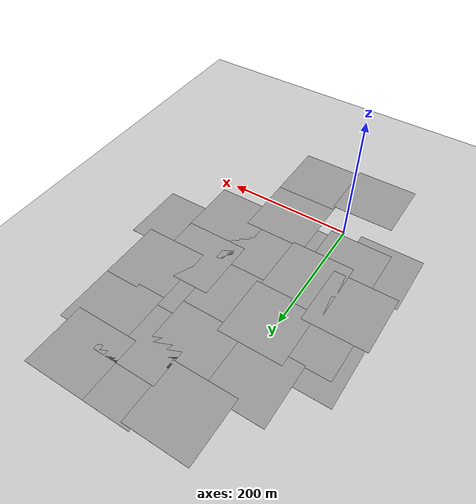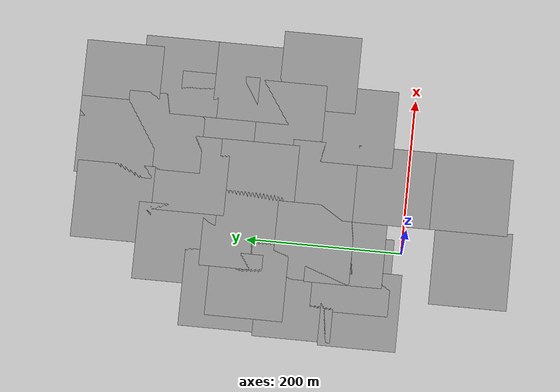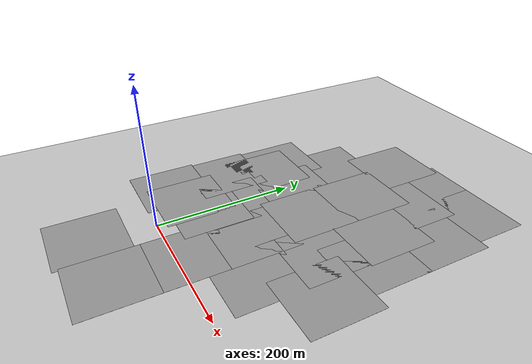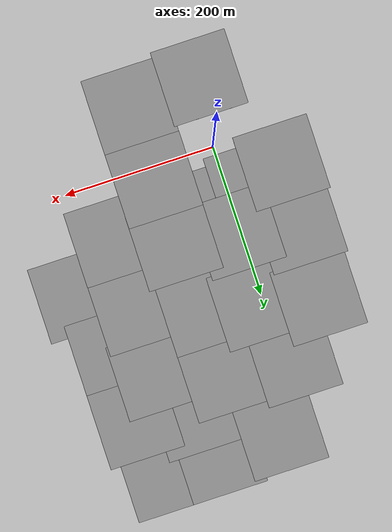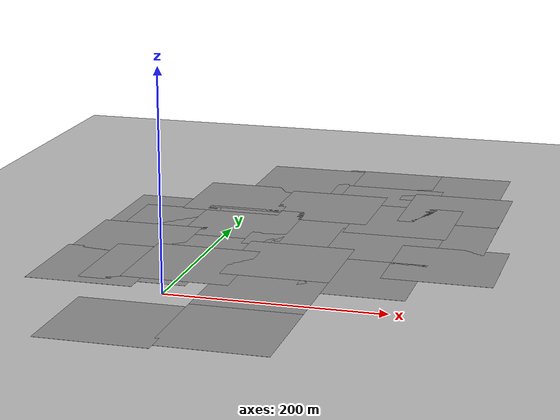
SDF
<sdf version="1.7">
 <world name="default">
  <light name="sun" type="directional">
   <pose>0 0 10 0 -0 0</pose>
   <diffuse>0.8 0.8 0.8 1</diffuse>
   <specular>0.2 0.2 0.2 1</specular>
   <attenuation>
    <range>1000</range>
    <constant>0.9</constant>
    <linear>0.01</linear>
    <quadratic>0.001</quadratic>
   </attenuation>
   <direction>-0.5 0.1 -0.9</direction>
   <spot><inner_angle>0</inner_angle><outer_angle>0</outer_angle><falloff>0</falloff></spot>
  </light>
  <model name="ground_plane">
   <pose>0 0 5 0 -0 0</pose>
   <static>1</static>
   <link name="link">
    <collision name="collision">
     <geometry><plane><normal>0 0 1</normal><size>100 100</size></plane></geometry>
     <surface><friction><ode><mu>100</mu><mu2>50</mu2></ode></friction></surface>
    </collision>
    <visual name="visual">
     <cast_shadows>0</cast_shadows>
     <geometry><plane><normal>0 0 1</normal><size>100 100</size></plane></geometry>
     <material>
      <script><uri>file://media/materials/scripts/gazebo.material</uri><name>Gazebo/Grey</name></script>
     </material>
    </visual>
   </link>
  </model>
  <gravity>0 0 -9.8</gravity>
  <magnetic_field>6e-06 2.3e-05 -4.2e-05</magnetic_field>
  <atmosphere type="adiabatic"/>
  <physics type="ode">
   <max_step_size>0.001</max_step_size>
   <real_time_factor>1</real_time_factor>
   <real_time_update_rate>1000</real_time_update_rate>
  </physics>
  <scene><ambient>0.4 0.4 0.4 1</ambient><background>0.7 0.7 0.7 1</background><shadows>1</shadows></scene>
  <spherical_coordinates>
   <surface_model>EARTH_WGS84</surface_model>
   <latitude_deg>0</latitude_deg>
   <longitude_deg>0</longitude_deg>
   <elevation>0</elevation>
   <heading_deg>0</heading_deg>
  </spherical_coordinates>
  <light name="user_spot_light_0" type="spot">
   <pose>-343.067 168.398 1 0 -0 0</pose>
   <diffuse>0.5 0.5 0.5 1</diffuse>
   <specular>0.1 0.1 0.1 1</specular>
   <direction>0 0 -1</direction>
   <attenuation>
    <range>20</range>
    <constant>0.5</constant>
    <linear>0.01</linear>
    <quadratic>0.001</quadratic>
   </attenuation>
   <cast_shadows>0</cast_shadows>
   <spot><inner_angle>0.6</inner_angle><outer_angle>1</outer_angle><falloff>1</falloff></spot>
  </light>
  <light name="user_spot_light_1" type="spot">
   <pose>-273.408 157.232 1 0 -0 0</pose>
   <diffuse>0.5 0.5 0.5 1</diffuse>
   <specular>0.1 0.1 0.1 1</specular>
   <direction>0 0 -1</direction>
   <attenuation>
    <range>20</range>
    <constant>0.5</constant>
    <linear>0.01</linear>
    <quadratic>0.001</quadratic>
   </attenuation>
   <cast_shadows>0</cast_shadows>
   <spot><inner_angle>0.6</inner_angle><outer_angle>1</outer_angle><falloff>1</falloff></spot>
  </light>
  <model name="ground_plane_0">
   <static>1</static>
   <link name="link">
    <collision name="collision">
     <geometry><plane><normal>0 0 1</normal><size>100 100</size></plane></geometry>
     <surface><friction><ode><mu>100</mu><mu2>50</mu2></ode></friction></surface>
    </collision>
    <visual name="visual">
     <cast_shadows>0</cast_shadows>
     <geometry><plane><normal>0 0 1</normal><size>100 100</size></plane></geometry>
     <material>
      <script><uri>file://media/materials/scripts/gazebo.material</uri><name>Gazebo/Grey</name></script>
     </material>
    </visual>
   </link>
   <pose>-11.1027 -89.6837 5 0 -0 0</pose>
  </model>
  <model name="ground_plane_1">
   <static>1</static>
   <link name="link">
    <collision name="collision">
     <geometry><plane><normal>0 0 1</normal><size>100 100</size></plane></geometry>
     <surface><friction><ode><mu>100</mu><mu2>50</mu2></ode></friction></surface>
    </collision>
    <visual name="visual">
     <cast_shadows>0</cast_shadows>
     <geometry><plane><normal>0 0 1</normal><size>100 100</size></plane></geometry>
     <material>
      <script><uri>file://media/materials/scripts/gazebo.material</uri><name>Gazebo/Grey</name></script>
     </material>
    </visual>
   </link>
   <pose>85.0806 16.9932 5 0 -0 0</pose>
  </model>
  <model name="ground_plane_2">
   <static>1</static>
   <link name="link">
    <collision name="collision">
     <geometry><plane><normal>0 0 1</normal><size>100 100</size></plane></geometry>
     <surface><friction><ode><mu>100</mu><mu2>50</mu2></ode></friction></surface>
    </collision>
    <visual name="visual">
     <cast_shadows>0</cast_shadows>
     <geometry><plane><normal>0 0 1</normal><size>100 100</size></plane></geometry>
     <material>
      <script><uri>file://media/materials/scripts/gazebo.material</uri><name>Gazebo/Grey</name></script>
     </material>
    </visual>
   </link>
   <pose>85.1922 -82.4172 5 0 -0 0</pose>
  </model>
  <model name="ground_plane_3">
   <static>1</static>
   <link name="link">
    <collision name="collision">
     <geometry><plane><normal>0 0 1</normal><size>100 100</size></plane></geometry>
     <surface><friction><ode><mu>100</mu><mu2>50</mu2></ode></friction></surface>
    </collision>
    <visual name="visual">
     <cast_shadows>0</cast_shadows>
     <geometry><plane><normal>0 0 1</normal><size>100 100</size></plane></geometry>
     <material>
      <script><uri>file://media/materials/scripts/gazebo.material</uri><name>Gazebo/Grey</name></script>
     </material>
    </visual>
   </link>
   <pose>-77.3086 46.9241 5 0 -0 0</pose>
  </model>
  <model name="ground_plane_4">
   <static>1</static>
   <link name="link">
    <collision name="collision">
     <geometry><plane><normal>0 0 1</normal><size>100 100</size></plane></geometry>
     <surface><friction><ode><mu>100</mu><mu2>50</mu2></ode></friction></surface>
    </collision>
    <visual name="visual">
     <cast_shadows>0</cast_shadows>
     <geometry><plane><normal>0 0 1</normal><size>100 100</size></plane></geometry>
     <material>
      <script><uri>file://media/materials/scripts/gazebo.material</uri><name>Gazebo/Grey</name></script>
     </material>
    </visual>
   </link>
   <pose>85.2791 101.703 5 0 -0 0</pose>
  </model>
  <model name="ground_plane_5">
   <static>1</static>
   <link name="link">
    <collision name="collision">
     <geometry><plane><normal>0 0 1</normal><size>100 100</size></plane></geometry>
     <surface><friction><ode><mu>100</mu><mu2>50</mu2></ode></friction></surface>
    </collision>
    <visual name="visual">
     <cast_shadows>0</cast_shadows>
     <geometry><plane><normal>0 0 1</normal><size>100 100</size></plane></geometry>
     <material>
      <script><uri>file://media/materials/scripts/gazebo.material</uri><name>Gazebo/Grey</name></script>
     </material>
    </visual>
   </link>
   <pose>3.87042 113.697 5 0 -0 0</pose>
  </model>
  <model name="ground_plane_6">
   <static>1</static>
   <link name="link">
    <collision name="collision">
     <geometry><plane><normal>0 0 1</normal><size>100 100</size></plane></geometry>
     <surface>
      <contact><collide_bitmask>65535</collide_bitmask></contact>
      <friction><ode><mu>100</mu><mu2>50</mu2></ode></friction>
     </surface>
    </collision>
    <visual name="visual">
     <cast_shadows>0</cast_shadows>
     <geometry><plane><normal>0 0 1</normal><size>100 100</size></plane></geometry>
     <material>
      <script><uri>file://media/materials/scripts/gazebo.material</uri><name>Gazebo/Grey</name></script>
     </material>
    </visual>
   </link>
   <pose>-73.3014 131.213 5 0 -0 0</pose>
  </model>
  <model name="ground_plane_7">
   <static>1</static>
   <link name="link">
    <collision name="collision">
     <geometry><plane><normal>0 0 1</normal><size>100 100</size></plane></geometry>
     <surface>
      <contact><collide_bitmask>65535</collide_bitmask></contact>
      <friction><ode><mu>100</mu><mu2>50</mu2></ode></friction>
     </surface>
    </collision>
    <visual name="visual">
     <cast_shadows>0</cast_shadows>
     <geometry><plane><normal>0 0 1</normal><size>100 100</size></plane></geometry>
     <material>
      <script><uri>file://media/materials/scripts/gazebo.material</uri><name>Gazebo/Grey</name></script>
     </material>
    </visual>
   </link>
   <pose>-68.7114 226.423 5 0 -0 0</pose>
  </model>
  <model name="ground_plane_8">
   <static>1</static>
   <link name="link">
    <collision name="collision">
     <geometry><plane><normal>0 0 1</normal><size>100 100</size></plane></geometry>
     <surface>
      <contact><collide_bitmask>65535</collide_bitmask></contact>
      <friction><ode><mu>100</mu><mu2>50</mu2></ode></friction>
     </surface>
    </collision>
    <visual name="visual">
     <cast_shadows>0</cast_shadows>
     <geometry><plane><normal>0 0 1</normal><size>100 100</size></plane></geometry>
     <material>
      <script><uri>file://media/materials/scripts/gazebo.material</uri><name>Gazebo/Grey</name></script>
     </material>
    </visual>
   </link>
   <pose>11.0731 207.73 5 0 -0 0</pose>
  </model>
  <model name="ground_plane_9">
   <static>1</static>
   <link name="link">
    <collision name="collision">
     <geometry><plane><normal>0 0 1</normal><size>100 100</size></plane></geometry>
     <surface>
      <contact><collide_bitmask>65535</collide_bitmask></contact>
      <friction><ode><mu>100</mu><mu2>50</mu2></ode></friction>
     </surface>
    </collision>
    <visual name="visual">
     <cast_shadows>0</cast_shadows>
     <geometry><plane><normal>0 0 1</normal><size>100 100</size></plane></geometry>
     <material>
      <script><uri>file://media/materials/scripts/gazebo.material</uri><name>Gazebo/Grey</name></script>
     </material>
    </visual>
   </link>
   <pose>77.5193 193.345 5 0 -0 0</pose>
  </model>
  <model name="ground_plane_10">
   <static>1</static>
   <link name="link">
    <collision name="collision">
     <geometry><plane><normal>0 0 1</normal><size>100 100</size></plane></geometry>
     <surface>
      <contact><collide_bitmask>65535</collide_bitmask></contact>
      <friction><ode><mu>100</mu><mu2>50</mu2></ode></friction>
     </surface>
    </collision>
    <visual name="visual">
     <cast_shadows>0</cast_shadows>
     <geometry><plane><normal>0 0 1</normal><size>100 100</size></plane></geometry>
     <material>
      <script><uri>file://media/materials/scripts/gazebo.material</uri><name>Gazebo/Grey</name></script>
     </material>
    </visual>
   </link>
   <pose>-14.1848 291.445 5 0 -0 0</pose>
  </model>
  <model name="ground_plane_11">
   <static>1</static>
   <link name="link">
    <collision name="collision">
     <geometry><plane><normal>0 0 1</normal><size>100 100</size></plane></geometry>
     <surface>
      <contact><collide_bitmask>65535</collide_bitmask></contact>
      <friction><ode><mu>100</mu><mu2>50</mu2></ode></friction>
     </surface>
    </collision>
    <visual name="visual">
     <cast_shadows>0</cast_shadows>
     <geometry><plane><normal>0 0 1</normal><size>100 100</size></plane></geometry>
     <material>
      <script><uri>file://media/materials/scripts/gazebo.material</uri><name>Gazebo/Grey</name></script>
     </material>
    </visual>
   </link>
   <pose>77.4044 281.986 5 0 -0 0</pose>
  </model>
  <model name="ground_plane_12">
   <static>1</static>
   <link name="link">
    <collision name="collision">
     <geometry><plane><normal>0 0 1</normal><size>100 100</size></plane></geometry>
     <surface>
      <contact><collide_bitmask>65535</collide_bitmask></contact>
      <friction><ode><mu>100</mu><mu2>50</mu2></ode></friction>
     </surface>
    </collision>
    <visual name="visual">
     <cast_shadows>0</cast_shadows>
     <geometry><plane><normal>0 0 1</normal><size>100 100</size></plane></geometry>
     <material>
      <script><uri>file://media/materials/scripts/gazebo.material</uri><name>Gazebo/Grey</name></script>
     </material>
    </visual>
   </link>
   <pose>159.406 72.3911 5 0 -0 0</pose>
  </model>
  <model name="ground_plane_13">
   <static>1</static>
   <link name="link">
    <collision name="collision">
     <geometry><plane><normal>0 0 1</normal><size>100 100</size></plane></geometry>
     <surface>
      <contact><collide_bitmask>65535</collide_bitmask></contact>
      <friction><ode><mu>100</mu><mu2>50</mu2></ode></friction>
     </surface>
    </collision>
    <visual name="visual">
     <cast_shadows>0</cast_shadows>
     <geometry><plane><normal>0 0 1</normal><size>100 100</size></plane></geometry>
     <material>
      <script><uri>file://media/materials/scripts/gazebo.material</uri><name>Gazebo/Grey</name></script>
     </material>
    </visual>
   </link>
   <pose>159.035 165.358 5 0 -0 0</pose>
  </model>
  <model name="ground_plane_14">
   <static>1</static>
   <link name="link">
    <collision name="collision">
     <geometry><plane><normal>0 0 1</normal><size>100 100</size></plane></geometry>
     <surface>
      <contact><collide_bitmask>65535</collide_bitmask></contact>
      <friction><ode><mu>100</mu><mu2>50</mu2></ode></friction>
     </surface>
    </collision>
    <visual name="visual">
     <cast_shadows>0</cast_shadows>
     <geometry><plane><normal>0 0 1</normal><size>100 100</size></plane></geometry>
     <material>
      <script><uri>file://media/materials/scripts/gazebo.material</uri><name>Gazebo/Grey</name></script>
     </material>
    </visual>
   </link>
   <pose>161.322 252.487 5 0 -0 0</pose>
  </model>
  <model name="ground_plane_15">
   <static>1</static>
   <link name="link">
    <collision name="collision">
     <geometry><plane><normal>0 0 1</normal><size>100 100</size></plane></geometry>
     <surface>
      <contact><collide_bitmask>65535</collide_bitmask></contact>
      <friction><ode><mu>100</mu><mu2>50</mu2></ode></friction>
     </surface>
    </collision>
    <visual name="visual">
     <cast_shadows>0</cast_shadows>
     <geometry><plane><normal>0 0 1</normal><size>100 100</size></plane></geometry>
     <material>
      <script><uri>file://media/materials/scripts/gazebo.material</uri><name>Gazebo/Grey</name></script>
     </material>
    </visual>
   </link>
   <pose>32.4628 375.298 5 0 -0 0</pose>
  </model>
  <model name="ground_plane_16">
   <static>1</static>
   <link name="link">
    <collision name="collision">
     <geometry><plane><normal>0 0 1</normal><size>100 100</size></plane></geometry>
     <surface>
      <contact><collide_bitmask>65535</collide_bitmask></contact>
      <friction><ode><mu>100</mu><mu2>50</mu2></ode></friction>
     </surface>
    </collision>
    <visual name="visual">
     <cast_shadows>0</cast_shadows>
     <geometry><plane><normal>0 0 1</normal><size>100 100</size></plane></geometry>
     <material>
      <script><uri>file://media/materials/scripts/gazebo.material</uri><name>Gazebo/Grey</name></script>
     </material>
    </visual>
   </link>
   <pose>203.642 303.634 5 0 -0 0</pose>
  </model>
  <model name="ground_plane_17">
   <static>1</static>
   <link name="link">
    <collision name="collision">
     <geometry><plane><normal>0 0 1</normal><size>100 100</size></plane></geometry>
     <surface>
      <contact><collide_bitmask>65535</collide_bitmask></contact>
      <friction><ode><mu>100</mu><mu2>50</mu2></ode></friction>
     </surface>
    </collision>
    <visual name="visual">
     <cast_shadows>0</cast_shadows>
     <geometry><plane><normal>0 0 1</normal><size>100 100</size></plane></geometry>
     <material>
      <script><uri>file://media/materials/scripts/gazebo.material</uri><name>Gazebo/Grey</name></script>
     </material>
    </visual>
   </link>
   <pose>129.312 318.254 5 0 -0 0</pose>
  </model>
  <model name="ground_plane_18">
   <static>1</static>
   <link name="link">
    <collision name="collision">
     <geometry><plane><normal>0 0 1</normal><size>100 100</size></plane></geometry>
     <surface>
      <contact><collide_bitmask>65535</collide_bitmask></contact>
      <friction><ode><mu>100</mu><mu2>50</mu2></ode></friction>
     </surface>
    </collision>
    <visual name="visual">
     <cast_shadows>0</cast_shadows>
     <geometry><plane><normal>0 0 1</normal><size>100 100</size></plane></geometry>
     <material>
      <script><uri>file://media/materials/scripts/gazebo.material</uri><name>Gazebo/Grey</name></script>
     </material>
    </visual>
   </link>
   <pose>116.736 379.367 5 0 -0 0</pose>
  </model>
  <model name="ground_plane_19">
   <static>1</static>
   <link name="link">
    <collision name="collision">
     <geometry><plane><normal>0 0 1</normal><size>100 100</size></plane></geometry>
     <surface>
      <contact><collide_bitmask>65535</collide_bitmask></contact>
      <friction><ode><mu>100</mu><mu2>50</mu2></ode></friction>
     </surface>
    </collision>
    <visual name="visual">
     <cast_shadows>0</cast_shadows>
     <geometry><plane><normal>0 0 1</normal><size>100 100</size></plane></geometry>
     <material>
      <script><uri>file://media/materials/scripts/gazebo.material</uri><name>Gazebo/Grey</name></script>
     </material>
    </visual>
   </link>
   <pose>190.47 379.379 5 0 -0 0</pose>
  </model>
  <model name="ground_plane_20">
   <static>1</static>
   <link name="link">
    <collision name="collision">
     <geometry><plane><normal>0 0 1</normal><size>100 100</size></plane></geometry>
     <surface>
      <contact><collide_bitmask>65535</collide_bitmask></contact>
      <friction><ode><mu>100</mu><mu2>50</mu2></ode></friction>
     </surface>
    </collision>
    <visual name="visual">
     <cast_shadows>0</cast_shadows>
     <geometry><plane><normal>0 0 1</normal><size>100 100</size></plane></geometry>
     <material>
      <script><uri>file://media/materials/scripts/gazebo.material</uri><name>Gazebo/Grey</name></script>
     </material>
    </visual>
   </link>
   <pose>203.571 209.847 5 0 -0 0</pose>
  </model>
  <model name="ground_plane_21">
   <static>1</static>
   <link name="link">
    <collision name="collision">
     <geometry><plane><normal>0 0 1</normal><size>100 100</size></plane></geometry>
     <surface><friction><ode><mu>100</mu><mu2>50</mu2></ode></friction></surface>
    </collision>
    <visual name="visual">
     <cast_shadows>0</cast_shadows>
     <geometry><plane><normal>0 0 1</normal><size>100 100</size></plane></geometry>
     <material>
      <script><uri>file://media/materials/scripts/gazebo.material</uri><name>Gazebo/Grey</name></script>
     </material>
    </visual>
   </link>
   <pose>-33.0063 60.9267 5 0 -0 0</pose>
  </model>
  <model name="ground_plane_22">
   <static>1</static>
   <link name="link">
    <collision name="collision">
     <geometry><plane><normal>0 0 1</normal><size>100 100</size></plane></geometry>
     <surface><friction><ode><mu>100</mu><mu2>50</mu2></ode></friction></surface>
    </collision>
    <visual name="visual">
     <cast_shadows>0</cast_shadows>
     <geometry><plane><normal>0 0 1</normal><size>100 100</size></plane></geometry>
     <material>
      <script><uri>file://media/materials/scripts/gazebo.material</uri><name>Gazebo/Grey</name></script>
     </material>
    </visual>
   </link>
   <pose>2.6693 71.7396 5 0 -0 0</pose>
  </model>
  <model name="ground_plane_23">
   <static>1</static>
   <link name="link">
    <collision name="collision">
     <geometry><plane><normal>0 0 1</normal><size>100 100</size></plane></geometry>
     <surface><friction><ode><mu>100</mu><mu2>50</mu2></ode></friction></surface>
    </collision>
    <visual name="visual">
     <cast_shadows>0</cast_shadows>
     <geometry><plane><normal>0 0 1</normal><size>100 100</size></plane></geometry>
     <material>
      <script><uri>file://media/materials/scripts/gazebo.material</uri><name>Gazebo/Grey</name></script>
     </material>
    </visual>
   </link>
   <pose>-52.054 194.162 5 0 -0 0</pose>
  </model>
  <model name="ground_plane_24">
   <static>1</static>
   <link name="link">
    <collision name="collision">
     <geometry><plane><normal>0 0 1</normal><size>100 100</size></plane></geometry>
     <surface>
      <contact><collide_bitmask>65535</collide_bitmask></contact>
      <friction><ode><mu>100</mu><mu2>50</mu2></ode></friction>
     </surface>
    </collision>
    <visual name="visual">
     <cast_shadows>0</cast_shadows>
     <geometry><plane><normal>0 0 1</normal><size>100 100</size></plane></geometry>
     <material>
      <script><uri>file://media/materials/scripts/gazebo.material</uri><name>Gazebo/Grey</name></script>
     </material>
    </visual>
   </link>
   <pose>225.842 126.393 5 0 -0 0</pose>
  </model>
 </world>
</sdf>
